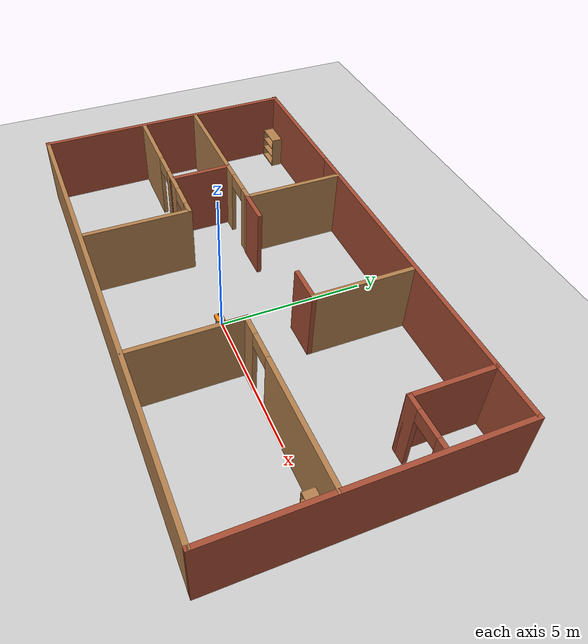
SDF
<sdf version="1.7">
 <world name="default">
  <light name="sun" type="directional">
   <pose>0 0 10 0 -0 0</pose>
   <diffuse>0.8 0.8 0.8 1</diffuse>
   <specular>0.2 0.2 0.2 1</specular>
   <attenuation>
    <range>1000</range>
    <constant>0.9</constant>
    <linear>0.01</linear>
    <quadratic>0.001</quadratic>
   </attenuation>
   <direction>-0.5 0.1 -0.9</direction>
   <spot><inner_angle>0</inner_angle><outer_angle>0</outer_angle><falloff>0</falloff></spot>
  </light>
  <model name="ground_plane">
   <static>1</static>
   <link name="link">
    <collision name="collision">
     <geometry><plane><normal>0 0 1</normal><size>100 100</size></plane></geometry>
     <surface><friction><ode><mu>100</mu><mu2>50</mu2></ode></friction></surface>
    </collision>
    <visual name="visual">
     <cast_shadows>0</cast_shadows>
     <geometry><plane><normal>0 0 1</normal><size>100 100</size></plane></geometry>
     <material>
      <script><uri>file://media/materials/scripts/gazebo.material</uri><name>Gazebo/Grey</name></script>
     </material>
    </visual>
   </link>
  </model>
  <gravity>0 0 -9.8</gravity>
  <magnetic_field>6e-06 2.3e-05 -4.2e-05</magnetic_field>
  <atmosphere type="adiabatic"/>
  <physics type="ode">
   <max_step_size>0.001</max_step_size>
   <real_time_factor>1</real_time_factor>
   <real_time_update_rate>1000</real_time_update_rate>
  </physics>
  <scene><ambient>0.4 0.4 0.4 1</ambient><background>0.7 0.7 0.7 1</background><shadows>1</shadows></scene>
  <spherical_coordinates>
   <surface_model>EARTH_WGS84</surface_model>
   <latitude_deg>0</latitude_deg>
   <longitude_deg>0</longitude_deg>
   <elevation>0</elevation>
   <heading_deg>0</heading_deg>
  </spherical_coordinates>
  <model name="Untitled_0">
   <pose>-0.41893 0.952842 0 0 -0 0</pose>
   <link name="Wall_100">
    <pose>5.50853 -0.937204 0 0 -0 -3.1376</pose>
    <visual name="Wall_100_Visual_0">
     <pose>-0.81176 0 1.25 0 -0 0</pose>
     <geometry><box><size>4.31601 0.15 2.5</size></box></geometry>
     <material>
      <script><uri>file://media/materials/scripts/gazebo.material</uri><name>Gazebo/Wood</name></script>
      <ambient>1 1 1 1</ambient>
     </material>
     <meta><layer>0</layer></meta>
    </visual>
    <collision name="Wall_100_Collision_0">
     <geometry><box><size>4.31601 0.15 2.5</size></box></geometry>
     <pose>-0.81176 0 1.25 0 -0 0</pose>
    </collision>
    <visual name="Wall_100_Visual_1">
     <pose>2.608 0 1.25 0 -0 0</pose>
     <geometry><box><size>0.72352 0.15 2.5</size></box></geometry>
     <material>
      <script><uri>file://media/materials/scripts/gazebo.material</uri><name>Gazebo/Wood</name></script>
      <ambient>1 1 1 1</ambient>
     </material>
     <meta><layer>0</layer></meta>
    </visual>
    <collision name="Wall_100_Collision_1">
     <geometry><box><size>0.72352 0.15 2.5</size></box></geometry>
     <pose>2.608 0 1.25 0 -0 0</pose>
    </collision>
    <visual name="Wall_100_Visual_2">
     <pose>1.79624 0 2.25 0 -0 0</pose>
     <geometry><box><size>0.9 0.15 0.5</size></box></geometry>
     <material>
      <script><uri>file://media/materials/scripts/gazebo.material</uri><name>Gazebo/Wood</name></script>
      <ambient>1 1 1 1</ambient>
     </material>
     <meta><layer>0</layer></meta>
    </visual>
    <collision name="Wall_100_Collision_2">
     <geometry><box><size>0.9 0.15 0.5</size></box></geometry>
     <pose>1.79624 0 2.25 0 -0 0</pose>
    </collision>
   </link>
   <link name="Wall_101">
    <collision name="Wall_101_Collision">
     <geometry><box><size>3.75 0.15 2.5</size></box></geometry>
     <pose>0 0 1.25 0 -0 0</pose>
    </collision>
    <visual name="Wall_101_Visual">
     <pose>0 0 1.25 0 -0 0</pose>
     <geometry><box><size>3.75 0.15 2.5</size></box></geometry>
     <material>
      <script><uri>file://media/materials/scripts/gazebo.material</uri><name>Gazebo/Wood</name></script>
      <ambient>1 1 1 1</ambient>
     </material>
     <meta><layer>0</layer></meta>
    </visual>
    <pose>2.59066 -2.74877 0 0 -0 -1.5708</pose>
   </link>
   <link name="Wall_105">
    <pose>-5.45076 1.15612 0 0 -0 0</pose>
    <visual name="Wall_105_Visual_0">
     <pose>-0.708525 0 1.25 0 -0 0</pose>
     <geometry><box><size>4.33295 0.15 2.5</size></box></geometry>
     <material>
      <script><uri>file://media/materials/scripts/gazebo.material</uri><name>Gazebo/Wood</name></script>
      <ambient>1 1 1 1</ambient>
     </material>
     <meta><layer>0</layer></meta>
    </visual>
    <collision name="Wall_105_Collision_0">
     <geometry><box><size>4.33295 0.15 2.5</size></box></geometry>
     <pose>-0.708525 0 1.25 0 -0 0</pose>
    </collision>
    <visual name="Wall_105_Visual_1">
     <pose>2.61647 0 1.25 0 -0 0</pose>
     <geometry><box><size>0.51705 0.15 2.5</size></box></geometry>
     <material>
      <script><uri>file://media/materials/scripts/gazebo.material</uri><name>Gazebo/Wood</name></script>
      <ambient>1 1 1 1</ambient>
     </material>
     <meta><layer>0</layer></meta>
    </visual>
    <collision name="Wall_105_Collision_1">
     <geometry><box><size>0.51705 0.15 2.5</size></box></geometry>
     <pose>2.61647 0 1.25 0 -0 0</pose>
    </collision>
    <visual name="Wall_105_Visual_2">
     <pose>1.90795 0 2.25 0 -0 0</pose>
     <geometry><box><size>0.9 0.15 0.5</size></box></geometry>
     <material>
      <script><uri>file://media/materials/scripts/gazebo.material</uri><name>Gazebo/Wood</name></script>
      <ambient>1 1 1 1</ambient>
     </material>
     <meta><layer>0</layer></meta>
    </visual>
    <collision name="Wall_105_Collision_2">
     <geometry><box><size>0.9 0.15 0.5</size></box></geometry>
     <pose>1.90795 0 2.25 0 -0 0</pose>
    </collision>
   </link>
   <link name="Wall_107">
    <collision name="Wall_107_Collision">
     <geometry><box><size>3.5507 0.15 2.5</size></box></geometry>
     <pose>0 0 1.25 0 -0 0</pose>
    </collision>
    <visual name="Wall_107_Visual">
     <pose>0 0 1.25 0 -0 0</pose>
     <geometry><box><size>3.5507 0.15 2.5</size></box></geometry>
     <material>
      <script><uri>file://media/materials/scripts/gazebo.material</uri><name>Gazebo/Wood</name></script>
      <ambient>1 1 1 1</ambient>
     </material>
     <meta><layer>0</layer></meta>
    </visual>
    <pose>-2.65076 2.83333 0 0 -0 1.5708</pose>
   </link>
   <link name="Wall_110">
    <collision name="Wall_110_Collision">
     <geometry><box><size>2.25 0.15 2.5</size></box></geometry>
     <pose>0 0 1.25 0 -0 0</pose>
    </collision>
    <visual name="Wall_110_Visual">
     <pose>0 0 1.25 0 -0 0</pose>
     <geometry><box><size>2.25 0.15 2.5</size></box></geometry>
     <material>
      <script><uri>file://media/materials/scripts/gazebo.material</uri><name>Gazebo/Bricks</name></script>
      <ambient>1 1 1 1</ambient>
     </material>
     <meta><layer>0</layer></meta>
    </visual>
    <pose>-4.57047 0.104364 0 0 -0 -1.5708</pose>
   </link>
   <link name="Wall_112">
    <collision name="Wall_112_Collision">
     <geometry><box><size>3.46502 0.15 2.5</size></box></geometry>
     <pose>0 0 1.25 0 -0 0</pose>
    </collision>
    <visual name="Wall_112_Visual">
     <pose>0 0 1.25 0 -0 0</pose>
     <geometry><box><size>3.46502 0.15 2.5</size></box></geometry>
     <material>
      <script><uri>file://media/materials/scripts/gazebo.material</uri><name>Gazebo/Wood</name></script>
      <ambient>1 1 1 1</ambient>
     </material>
     <meta><layer>0</layer></meta>
    </visual>
    <pose>2.53389 2.8446 0 0 -0 -1.5708</pose>
   </link>
   <link name="Wall_113">
    <collision name="Wall_113_Collision">
     <geometry><box><size>1.25 0.15 2.5</size></box></geometry>
     <pose>0 0 1.25 0 -0 0</pose>
    </collision>
    <visual name="Wall_113_Visual">
     <pose>0 0 1.25 0 -0 0</pose>
     <geometry><box><size>1.25 0.15 2.5</size></box></geometry>
     <material>
      <script><uri>file://media/materials/scripts/gazebo.material</uri><name>Gazebo/Bricks</name></script>
      <ambient>1 1 1 1</ambient>
     </material>
     <meta><layer>0</layer></meta>
    </visual>
    <pose>1.98389 1.1696 0 0 -0 3.14159</pose>
   </link>
   <link name="Wall_115">
    <collision name="Wall_115_Collision">
     <geometry><box><size>1.25 0.15 2.5</size></box></geometry>
     <pose>0 0 1.25 0 -0 0</pose>
    </collision>
    <visual name="Wall_115_Visual">
     <pose>0 0 1.25 0 -0 0</pose>
     <geometry><box><size>1.25 0.15 2.5</size></box></geometry>
     <material>
      <script><uri>file://media/materials/scripts/gazebo.material</uri><name>Gazebo/Bricks</name></script>
      <ambient>1 1 1 1</ambient>
     </material>
     <meta><layer>0</layer></meta>
    </visual>
    <pose>-2.10076 1.13299 0 0 -0 0</pose>
   </link>
   <link name="Wall_117">
    <collision name="Wall_117_Collision">
     <geometry><box><size>2.75 0.15 2.5</size></box></geometry>
     <pose>0 0 1.25 0 -0 0</pose>
    </collision>
    <visual name="Wall_117_Visual">
     <pose>0 0 1.25 0 -0 0</pose>
     <geometry><box><size>2.75 0.15 2.5</size></box></geometry>
     <material>
      <script><uri>file://media/materials/scripts/gazebo.material</uri><name>Gazebo/Bricks</name></script>
      <ambient>1 1 1 1</ambient>
     </material>
     <meta><layer>0</layer></meta>
    </visual>
    <pose>6.64406 3.23709 0 0 -0 -1.5708</pose>
   </link>
   <link name="Wall_118">
    <pose>7.49292 1.93709 0 0 -0 0</pose>
    <visual name="Wall_118_Visual_0">
     <pose>-0.647878 0 1.25 0 -0 0</pose>
     <geometry><box><size>0.516993 0.15 2.5</size></box></geometry>
     <material>
      <script><uri>file://media/materials/scripts/gazebo.material</uri><name>Gazebo/Bricks</name></script>
      <ambient>1 1 1 1</ambient>
     </material>
     <meta><layer>0</layer></meta>
    </visual>
    <collision name="Wall_118_Collision_0">
     <geometry><box><size>0.516993 0.15 2.5</size></box></geometry>
     <pose>-0.647878 0 1.25 0 -0 0</pose>
    </collision>
    <visual name="Wall_118_Visual_1">
     <pose>0.708497 0 1.25 0 -0 0</pose>
     <geometry><box><size>0.395755 0.15 2.5</size></box></geometry>
     <material>
      <script><uri>file://media/materials/scripts/gazebo.material</uri><name>Gazebo/Bricks</name></script>
      <ambient>1 1 1 1</ambient>
     </material>
     <meta><layer>0</layer></meta>
    </visual>
    <collision name="Wall_118_Collision_1">
     <geometry><box><size>0.395755 0.15 2.5</size></box></geometry>
     <pose>0.708497 0 1.25 0 -0 0</pose>
    </collision>
    <visual name="Wall_118_Visual_2">
     <pose>0.060619 0 2.25 0 -0 0</pose>
     <geometry><box><size>0.9 0.15 0.5</size></box></geometry>
     <material>
      <script><uri>file://media/materials/scripts/gazebo.material</uri><name>Gazebo/Bricks</name></script>
      <ambient>1 1 1 1</ambient>
     </material>
     <meta><layer>0</layer></meta>
    </visual>
    <collision name="Wall_118_Collision_2">
     <geometry><box><size>0.9 0.15 0.5</size></box></geometry>
     <pose>0.060619 0 2.25 0 -0 0</pose>
    </collision>
   </link>
   <link name="Wall_90">
    <collision name="Wall_90_Collision">
     <geometry><box><size>9.35624 0.15 2.5</size></box></geometry>
     <pose>0 0 1.25 0 -0 0</pose>
    </collision>
    <visual name="Wall_90_Visual">
     <pose>0 0 1.25 0 -0 0</pose>
     <geometry><box><size>9.35624 0.15 2.5</size></box></geometry>
     <material>
      <script><uri>file://media/materials/scripts/gazebo.material</uri><name>Gazebo/Bricks</name></script>
      <ambient>1 1 1 1</ambient>
     </material>
     <meta><layer>0</layer></meta>
    </visual>
    <pose>-8.36495 0 0 0 -0 -1.56454</pose>
   </link>
   <link name="Wall_91">
    <collision name="Wall_91_Collision">
     <geometry><box><size>16.9096 0.15 2.5</size></box></geometry>
     <pose>0 0 1.25 0 -0 0</pose>
    </collision>
    <visual name="Wall_91_Visual">
     <pose>0 0 1.25 0 -0 0</pose>
     <geometry><box><size>16.9096 0.15 2.5</size></box></geometry>
     <material>
      <script><uri>file://media/materials/scripts/gazebo.material</uri><name>Gazebo/Wood</name></script>
      <ambient>1 1 1 1</ambient>
     </material>
     <meta><layer>0</layer></meta>
    </visual>
    <pose>0.017053 -4.59729 0 0 -0 0.000685</pose>
   </link>
   <link name="Wall_92">
    <collision name="Wall_92_Collision">
     <geometry><box><size>9.34467 0.15 2.5</size></box></geometry>
     <pose>0 0 1.25 0 -0 0</pose>
    </collision>
    <visual name="Wall_92_Visual">
     <pose>0 0 1.25 0 -0 0</pose>
     <geometry><box><size>9.34467 0.15 2.5</size></box></geometry>
     <material>
      <script><uri>file://media/materials/scripts/gazebo.material</uri><name>Gazebo/Bricks</name></script>
      <ambient>1 1 1 1</ambient>
     </material>
     <meta><layer>0</layer></meta>
    </visual>
    <pose>8.40034 0.00574 0 0 -0 1.57507</pose>
   </link>
   <link name="Wall_93">
    <collision name="Wall_93_Collision">
     <geometry><box><size>12.1949 0.15 2.5</size></box></geometry>
     <pose>0 0 1.25 0 -0 0</pose>
    </collision>
    <visual name="Wall_93_Visual">
     <pose>0 0 1.25 0 -0 0</pose>
     <geometry><box><size>12.1949 0.15 2.5</size></box></geometry>
     <material>
      <script><uri>file://media/materials/scripts/gazebo.material</uri><name>Gazebo/Bricks</name></script>
      <ambient>1 1 1 1</ambient>
     </material>
     <meta><layer>0</layer></meta>
    </visual>
    <pose>2.33511 4.60303 0 0 -0 3.14159</pose>
   </link>
   <link name="Wall_94">
    <collision name="Wall_94_Collision">
     <geometry><box><size>4.883 0.15 2.5</size></box></geometry>
     <pose>0 0 1.25 0 -0 0</pose>
    </collision>
    <visual name="Wall_94_Visual">
     <pose>0 0 1.25 0 -0 0</pose>
     <geometry><box><size>4.883 0.15 2.5</size></box></geometry>
     <material>
      <script><uri>file://media/materials/scripts/gazebo.material</uri><name>Gazebo/Bricks</name></script>
      <ambient>1 1 1 1</ambient>
     </material>
     <meta><layer>0</layer></meta>
    </visual>
    <pose>-6.05382 4.60303 0 0 -0 3.14159</pose>
   </link>
   <link name="Wall_97">
    <pose>-5.43711 -0.928196 0 0 -0 -0.004144</pose>
    <visual name="Wall_97_Visual_0">
     <pose>-1.6796 0 1.25 0 -0 0</pose>
     <geometry><box><size>2.37189 0.15 2.5</size></box></geometry>
     <material>
      <script><uri>file://media/materials/scripts/gazebo.material</uri><name>Gazebo/Wood</name></script>
      <ambient>1 1 1 1</ambient>
     </material>
     <meta><layer>0</layer></meta>
    </visual>
    <collision name="Wall_97_Collision_0">
     <geometry><box><size>2.37189 0.15 2.5</size></box></geometry>
     <pose>-1.6796 0 1.25 0 -0 0</pose>
    </collision>
    <visual name="Wall_97_Visual_1">
     <pose>0.948447 0 1.25 0 -0 0</pose>
     <geometry><box><size>1.0842 0.15 2.5</size></box></geometry>
     <material>
      <script><uri>file://media/materials/scripts/gazebo.material</uri><name>Gazebo/Wood</name></script>
      <ambient>1 1 1 1</ambient>
     </material>
     <meta><layer>0</layer></meta>
    </visual>
    <collision name="Wall_97_Collision_1">
     <geometry><box><size>1.0842 0.15 2.5</size></box></geometry>
     <pose>0.948447 0 1.25 0 -0 0</pose>
    </collision>
    <visual name="Wall_97_Visual_2">
     <pose>2.62805 0 1.25 0 -0 0</pose>
     <geometry><box><size>0.475 0.15 2.5</size></box></geometry>
     <material>
      <script><uri>file://media/materials/scripts/gazebo.material</uri><name>Gazebo/Wood</name></script>
      <ambient>1 1 1 1</ambient>
     </material>
     <meta><layer>0</layer></meta>
    </visual>
    <collision name="Wall_97_Collision_2">
     <geometry><box><size>0.475 0.15 2.5</size></box></geometry>
     <pose>2.62805 0 1.25 0 -0 0</pose>
    </collision>
    <visual name="Wall_97_Visual_3">
     <pose>-0.043654 0 2.25 0 -0 0</pose>
     <geometry><box><size>0.9 0.15 0.5</size></box></geometry>
     <material>
      <script><uri>file://media/materials/scripts/gazebo.material</uri><name>Gazebo/Wood</name></script>
      <ambient>1 1 1 1</ambient>
     </material>
     <meta><layer>0</layer></meta>
    </visual>
    <collision name="Wall_97_Collision_3">
     <geometry><box><size>0.9 0.15 0.5</size></box></geometry>
     <pose>-0.043654 0 2.25 0 -0 0</pose>
    </collision>
    <visual name="Wall_97_Visual_4">
     <pose>1.94055 0 2.25 0 -0 0</pose>
     <geometry><box><size>0.9 0.15 0.5</size></box></geometry>
     <material>
      <script><uri>file://media/materials/scripts/gazebo.material</uri><name>Gazebo/Wood</name></script>
      <ambient>1 1 1 1</ambient>
     </material>
     <meta><layer>0</layer></meta>
    </visual>
    <collision name="Wall_97_Collision_4">
     <geometry><box><size>0.9 0.15 0.5</size></box></geometry>
     <pose>1.94055 0 2.25 0 -0 0</pose>
    </collision>
   </link>
   <link name="Wall_98">
    <collision name="Wall_98_Collision">
     <geometry><box><size>3.66209 0.15 2.5</size></box></geometry>
     <pose>0 0 1.25 0 -0 0</pose>
    </collision>
    <visual name="Wall_98_Visual">
     <pose>0 0 1.25 0 -0 0</pose>
     <geometry><box><size>3.66209 0.15 2.5</size></box></geometry>
     <material>
      <script><uri>file://media/materials/scripts/gazebo.material</uri><name>Gazebo/Wood</name></script>
      <ambient>1 1 1 1</ambient>
     </material>
     <meta><layer>0</layer></meta>
    </visual>
    <pose>-2.6322 -2.69579 0 0 -0 -1.57578</pose>
   </link>
   <static>1</static>
  </model>
  <model name="bookshelf">
   <static>1</static>
   <link name="link">
    <inertial><mass>1</mass></inertial>
    <collision name="back">
     <pose>0 0.005 0.6 0 -0 0</pose>
     <geometry><box><size>0.9 0.01 1.2</size></box></geometry>
    </collision>
    <visual name="visual1">
     <pose>0 0.005 0.6 0 -0 0</pose>
     <geometry><box><size>0.9 0.01 1.2</size></box></geometry>
     <material>
      <script><uri>file://media/materials/scripts/gazebo.material</uri><name>Gazebo/Wood</name></script>
     </material>
    </visual>
    <collision name="left_side">
     <pose>0.45 -0.195 0.6 0 -0 0</pose>
     <geometry><box><size>0.02 0.4 1.2</size></box></geometry>
    </collision>
    <visual name="visual2">
     <pose>0.45 -0.195 0.6 0 -0 0</pose>
     <geometry><box><size>0.02 0.4 1.2</size></box></geometry>
     <material>
      <script><uri>file://media/materials/scripts/gazebo.material</uri><name>Gazebo/Wood</name></script>
     </material>
    </visual>
    <collision name="right_side">
     <pose>-0.45 -0.195 0.6 0 -0 0</pose>
     <geometry><box><size>0.02 0.4 1.2</size></box></geometry>
    </collision>
    <visual name="visual3">
     <pose>-0.45 -0.195 0.6 0 -0 0</pose>
     <geometry><box><size>0.02 0.4 1.2</size></box></geometry>
     <material>
      <script><uri>file://media/materials/scripts/gazebo.material</uri><name>Gazebo/Wood</name></script>
     </material>
    </visual>
    <collision name="bottom">
     <pose>0 -0.195 0.03 0 -0 0</pose>
     <geometry><box><size>0.88 0.4 0.06</size></box></geometry>
    </collision>
    <visual name="visual4">
     <pose>0 -0.195 0.03 0 -0 0</pose>
     <geometry><box><size>0.88 0.4 0.06</size></box></geometry>
     <material>
      <script><uri>file://media/materials/scripts/gazebo.material</uri><name>Gazebo/Wood</name></script>
     </material>
    </visual>
    <collision name="top">
     <pose>0 -0.195 1.19 0 -0 0</pose>
     <geometry><box><size>0.88 0.4 0.02</size></box></geometry>
    </collision>
    <visual name="visual5">
     <pose>0 -0.195 1.19 0 -0 0</pose>
     <geometry><box><size>0.88 0.4 0.02</size></box></geometry>
     <material>
      <script><uri>file://media/materials/scripts/gazebo.material</uri><name>Gazebo/Wood</name></script>
     </material>
    </visual>
    <collision name="low_shelf">
     <pose>0 -0.195 0.43 0 -0 0</pose>
     <geometry><box><size>0.88 0.4 0.02</size></box></geometry>
    </collision>
    <visual name="visual6">
     <pose>0 -0.195 0.43 0 -0 0</pose>
     <geometry><box><size>0.88 0.4 0.02</size></box></geometry>
     <material>
      <script><uri>file://media/materials/scripts/gazebo.material</uri><name>Gazebo/Wood</name></script>
     </material>
    </visual>
    <collision name="high_shelf">
     <pose>0 -0.195 0.8 0 -0 0</pose>
     <geometry><box><size>0.88 0.4 0.02</size></box></geometry>
    </collision>
    <visual name="visual7">
     <pose>0 -0.195 0.8 0 -0 0</pose>
     <geometry><box><size>0.88 0.4 0.02</size></box></geometry>
     <material>
      <script><uri>file://media/materials/scripts/gazebo.material</uri><name>Gazebo/Wood</name></script>
     </material>
    </visual>
   </link>
   <pose>-8.22103 5.44498 0 0 -0 0</pose>
  </model>
  <model name="bookshelf_0">
   <static>1</static>
   <link name="link">
    <inertial><mass>1</mass></inertial>
    <collision name="back">
     <pose>0 0.005 0.6 0 -0 0</pose>
     <geometry><box><size>0.9 0.01 1.2</size></box></geometry>
    </collision>
    <visual name="visual1">
     <pose>0 0.005 0.6 0 -0 0</pose>
     <geometry><box><size>0.9 0.01 1.2</size></box></geometry>
     <material>
      <script><uri>file://media/materials/scripts/gazebo.material</uri><name>Gazebo/Wood</name></script>
     </material>
    </visual>
    <collision name="left_side">
     <pose>0.45 -0.195 0.6 0 -0 0</pose>
     <geometry><box><size>0.02 0.4 1.2</size></box></geometry>
    </collision>
    <visual name="visual2">
     <pose>0.45 -0.195 0.6 0 -0 0</pose>
     <geometry><box><size>0.02 0.4 1.2</size></box></geometry>
     <material>
      <script><uri>file://media/materials/scripts/gazebo.material</uri><name>Gazebo/Wood</name></script>
     </material>
    </visual>
    <collision name="right_side">
     <pose>-0.45 -0.195 0.6 0 -0 0</pose>
     <geometry><box><size>0.02 0.4 1.2</size></box></geometry>
    </collision>
    <visual name="visual3">
     <pose>-0.45 -0.195 0.6 0 -0 0</pose>
     <geometry><box><size>0.02 0.4 1.2</size></box></geometry>
     <material>
      <script><uri>file://media/materials/scripts/gazebo.material</uri><name>Gazebo/Wood</name></script>
     </material>
    </visual>
    <collision name="bottom">
     <pose>0 -0.195 0.03 0 -0 0</pose>
     <geometry><box><size>0.88 0.4 0.06</size></box></geometry>
    </collision>
    <visual name="visual4">
     <pose>0 -0.195 0.03 0 -0 0</pose>
     <geometry><box><size>0.88 0.4 0.06</size></box></geometry>
     <material>
      <script><uri>file://media/materials/scripts/gazebo.material</uri><name>Gazebo/Wood</name></script>
     </material>
    </visual>
    <collision name="top">
     <pose>0 -0.195 1.19 0 -0 0</pose>
     <geometry><box><size>0.88 0.4 0.02</size></box></geometry>
    </collision>
    <visual name="visual5">
     <pose>0 -0.195 1.19 0 -0 0</pose>
     <geometry><box><size>0.88 0.4 0.02</size></box></geometry>
     <material>
      <script><uri>file://media/materials/scripts/gazebo.material</uri><name>Gazebo/Wood</name></script>
     </material>
    </visual>
    <collision name="low_shelf">
     <pose>0 -0.195 0.43 0 -0 0</pose>
     <geometry><box><size>0.88 0.4 0.02</size></box></geometry>
    </collision>
    <visual name="visual6">
     <pose>0 -0.195 0.43 0 -0 0</pose>
     <geometry><box><size>0.88 0.4 0.02</size></box></geometry>
     <material>
      <script><uri>file://media/materials/scripts/gazebo.material</uri><name>Gazebo/Wood</name></script>
     </material>
    </visual>
    <collision name="high_shelf">
     <pose>0 -0.195 0.8 0 -0 0</pose>
     <geometry><box><size>0.88 0.4 0.02</size></box></geometry>
    </collision>
    <visual name="visual7">
     <pose>0 -0.195 0.8 0 -0 0</pose>
     <geometry><box><size>0.88 0.4 0.02</size></box></geometry>
     <material>
      <script><uri>file://media/materials/scripts/gazebo.material</uri><name>Gazebo/Wood</name></script>
     </material>
    </visual>
   </link>
   <pose>7.48542 -0.052713 0 0 -0 0</pose>
  </model>
  <model name="my_bot">
   <link name="base_link">
    <inertial>
     <pose>-0.067475 0 0.081098 0 -0 0</pose>
     <mass>0.61</mass>
     <inertia>
      <ixx>0.00561003</ixx>
      <ixy>0</ixy>
      <ixz>0.000453811</ixz>
      <iyy>0.00760348</iyy>
      <iyz>0</iyz>
      <izz>0.00797093</izz>
     </inertia>
    </inertial>
    <collision name="base_link_fixed_joint_lump__chassis_collision">
     <pose>-0.0585 0 0.059 0 -0 0</pose>
     <geometry><box><size>0.335 0.265 0.138</size></box></geometry>
    </collision>
    <collision name="base_link_fixed_joint_lump__caster_wheel_collision_1">
     <pose>-0.151 0 -0.023 0 -0 0</pose>
     <geometry><sphere><radius>0.01</radius></sphere></geometry>
     <surface><friction><ode><mu>0.001</mu><mu2>0.001</mu2></ode></friction></surface>
    </collision>
    <collision name="base_link_fixed_joint_lump__laser_frame_collision_2">
     <pose>-0.104 0 0.202 0 -0 0</pose>
     <geometry><cylinder><length>0.04</length><radius>0.05</radius></cylinder></geometry>
    </collision>
    <visual name="base_link_fixed_joint_lump__chassis_visual">
     <pose>-0.0585 0 0.059 0 -0 0</pose>
     <geometry><box><size>0.335 0.265 0.138</size></box></geometry>
     <material>
      <script><name>Gazebo/Orange</name><uri>file://media/materials/scripts/gazebo.material</uri></script>
     </material>
    </visual>
    <visual name="base_link_fixed_joint_lump__camera_link_visual_1">
     <pose>0.079 0 0.07 0 -0 0</pose>
     <geometry><box><size>0.01 0.03 0.03</size></box></geometry>
     <material>
      <script><name>Gazebo/Red</name><uri>file://media/materials/scripts/gazebo.material</uri></script>
     </material>
    </visual>
    <visual name="base_link_fixed_joint_lump__caster_wheel_visual_2">
     <pose>-0.151 0 -0.023 0 -0 0</pose>
     <geometry><sphere><radius>0.01</radius></sphere></geometry>
     <material>
      <script><name>Gazebo/White</name><uri>file://media/materials/scripts/gazebo.material</uri></script>
     </material>
    </visual>
    <visual name="base_link_fixed_joint_lump__face_link_visual_3">
     <pose>0.109 0.05 0.069 3.14159 1.57079 3.14159</pose>
     <geometry><cylinder><length>0.002</length><radius>0.01</radius></cylinder></geometry>
     <material>
      <script><name>Gazebo/Black</name><uri>file://media/materials/scripts/gazebo.material</uri></script>
     </material>
    </visual>
    <visual name="base_link_fixed_joint_lump__face_link_visual_4">
     <pose>0.109 -0.05 0.069 3.14159 1.57079 3.14159</pose>
     <geometry><cylinder><length>0.002</length><radius>0.01</radius></cylinder></geometry>
     <material>
      <script><name>Gazebo/Black</name><uri>file://media/materials/scripts/gazebo.material</uri></script>
     </material>
    </visual>
    <visual name="base_link_fixed_joint_lump__face_link_visual_5">
     <pose>0.098 0 0.059 0 1.5 0</pose>
     <geometry><cylinder><length>0.02</length><radius>0.05</radius></cylinder></geometry>
     <material>
      <script><name>Gazebo/Black</name><uri>file://media/materials/scripts/gazebo.material</uri></script>
     </material>
    </visual>
    <visual name="base_link_fixed_joint_lump__laser_frame_visual_6">
     <pose>-0.104 0 0.202 0 -0 0</pose>
     <geometry><cylinder><length>0.04</length><radius>0.05</radius></cylinder></geometry>
     <material>
      <script><name>Gazebo/Black</name><uri>file://media/materials/scripts/gazebo.material</uri></script>
     </material>
    </visual>
    <visual name="base_link_fixed_joint_lump__laser_frame_visual_7">
     <pose>-0.104 0 0.152 0 -0 0</pose>
     <geometry><cylinder><length>0.1</length><radius>0.01</radius></cylinder></geometry>
     <material>
      <script><name>Gazebo/Black</name><uri>file://media/materials/scripts/gazebo.material</uri></script>
     </material>
    </visual>
    <sensor name="camera" type="depth">
     <visualize>1</visualize>
     <update_rate>10</update_rate>
     <camera>
      <horizontal_fov>1.089</horizontal_fov>
      <image><format>B8G8R8</format><width>640</width><height>480</height></image>
      <clip><near>0.05</near><far>8</far></clip>
     </camera>
     <plugin name="camera_controller" filename="libgazebo_ros_camera.so">
      <frame_name>camera_link_optical</frame_name>
      <min_depth>0.1</min_depth>
      <max_depth>100.0</max_depth>
     </plugin>
     <pose>0.079 0 0.07 0 -0 0</pose>
    </sensor>
    <sensor name="laser" type="ray">
     <visualize>0</visualize>
     <update_rate>10</update_rate>
     <ray>
      <scan>
       <horizontal>
        <samples>240</samples>
        <min_angle>-2.094</min_angle>
        <max_angle>2.094</max_angle>
        <resolution>1</resolution>
       </horizontal>
       <vertical><samples>1</samples><min_angle>0</min_angle><max_angle>0</max_angle></vertical>
      </scan>
      <range><min>0.1</min><max>5.6</max></range>
     </ray>
     <plugin name="laser_controller" filename="libgazebo_ros_ray_sensor.so">
      <ros><argument>~/out:=scan</argument></ros>
      <output_type>sensor_msgs/LaserScan</output_type>
      <frame_name>laser_frame</frame_name>
     </plugin>
     <pose>-0.104 0 0.202 0 -0 0</pose>
    </sensor>
   </link>
   <joint name="left_wheel_joint" type="revolute">
    <pose relative_to="base_link">0 0.1485 0 -1.5708 0 0</pose>
    <parent>base_link</parent>
    <child>left_wheel</child>
    <axis>
     <xyz>0 0 1</xyz>
     <limit><lower>-1e+16</lower><upper>1e+16</upper></limit>
     <dynamics><spring_reference>0</spring_reference><spring_stiffness>0</spring_stiffness></dynamics>
    </axis>
   </joint>
   <link name="left_wheel">
    <pose relative_to="left_wheel_joint">0 0 0 0 -0 0</pose>
    <inertial>
     <mass>0.05</mass>
     <inertia>
      <ixx>1.64292e-05</ixx>
      <ixy>0</ixy>
      <ixz>0</ixz>
      <iyy>1.64292e-05</iyy>
      <iyz>0</iyz>
      <izz>2.7225e-05</izz>
     </inertia>
    </inertial>
    <collision name="left_wheel_collision">
     <geometry><sphere><radius>0.033</radius></sphere></geometry>
    </collision>
    <visual name="left_wheel_visual">
     <geometry><cylinder><length>0.026</length><radius>0.033</radius></cylinder></geometry>
     <material>
      <script><name>Gazebo/Blue</name><uri>file://media/materials/scripts/gazebo.material</uri></script>
     </material>
    </visual>
   </link>
   <joint name="right_wheel_joint" type="revolute">
    <pose relative_to="base_link">0 -0.1485 0 1.5708 -0 0</pose>
    <parent>base_link</parent>
    <child>right_wheel</child>
    <axis>
     <xyz>0 0 -1</xyz>
     <limit><lower>-1e+16</lower><upper>1e+16</upper></limit>
     <dynamics><spring_reference>0</spring_reference><spring_stiffness>0</spring_stiffness></dynamics>
    </axis>
   </joint>
   <link name="right_wheel">
    <pose relative_to="right_wheel_joint">0 0 0 0 -0 0</pose>
    <inertial>
     <mass>0.05</mass>
     <inertia>
      <ixx>1.64292e-05</ixx>
      <ixy>0</ixy>
      <ixz>0</ixz>
      <iyy>1.64292e-05</iyy>
      <iyz>0</iyz>
      <izz>2.7225e-05</izz>
     </inertia>
    </inertial>
    <collision name="right_wheel_collision">
     <geometry><sphere><radius>0.033</radius></sphere></geometry>
    </collision>
    <visual name="right_wheel_visual">
     <geometry><cylinder><length>0.026</length><radius>0.033</radius></cylinder></geometry>
     <material>
      <script><name>Gazebo/Blue</name><uri>file://media/materials/scripts/gazebo.material</uri></script>
     </material>
    </visual>
   </link>
   <static>0</static>
   <plugin name="gazebo_ros2_control" filename="libgazebo_ros2_control.so">
    <parameters>/home/quang/robot_ws/install/articubot_one/share/articubot_one/config/my_controllers.yaml</parameters>
    <parameters>/home/quang/robot_ws/install/articubot_one/share/articubot_one/config/gaz_ros2_ctl_use_sim.yaml</parameters>
   </plugin>
   <pose>-0.133361 -3.5e-05 0.032997 1.6e-05 1.8e-05 0.003705</pose>
  </model>
 </world>
</sdf>
